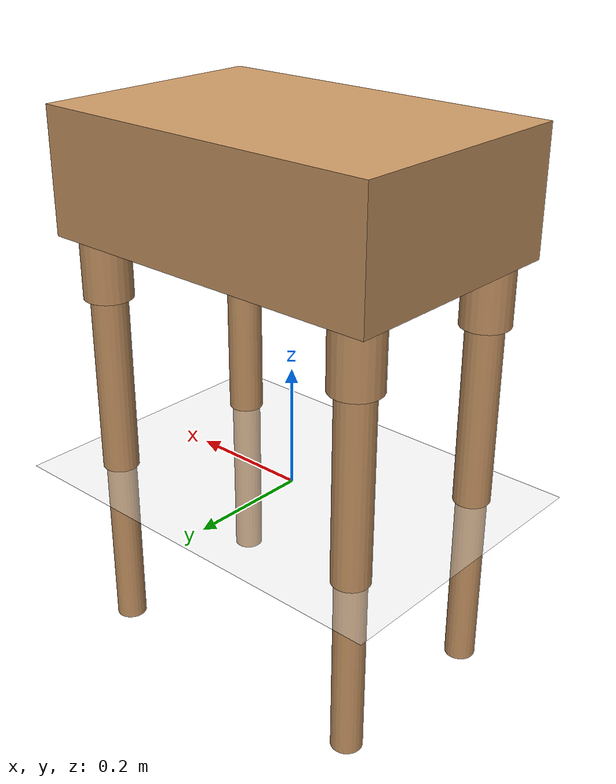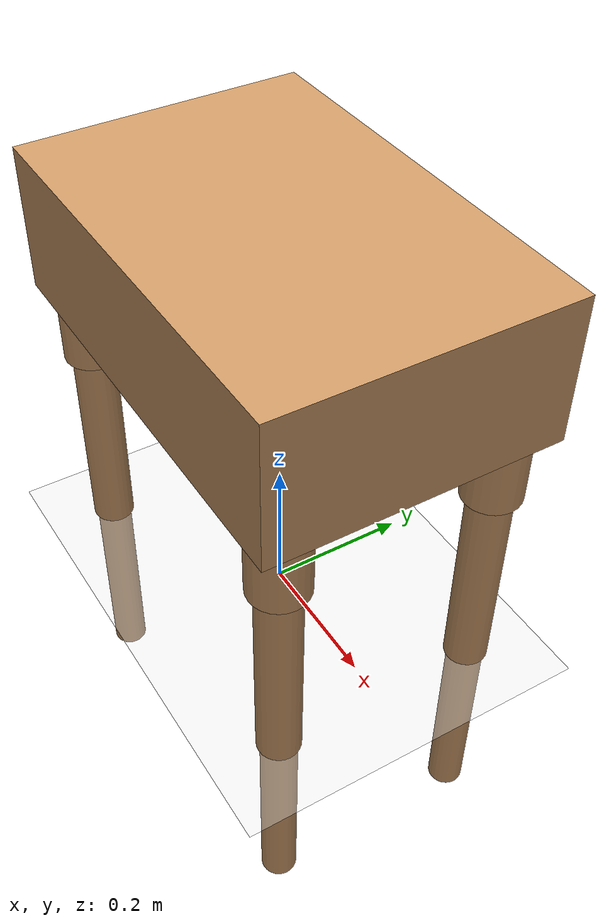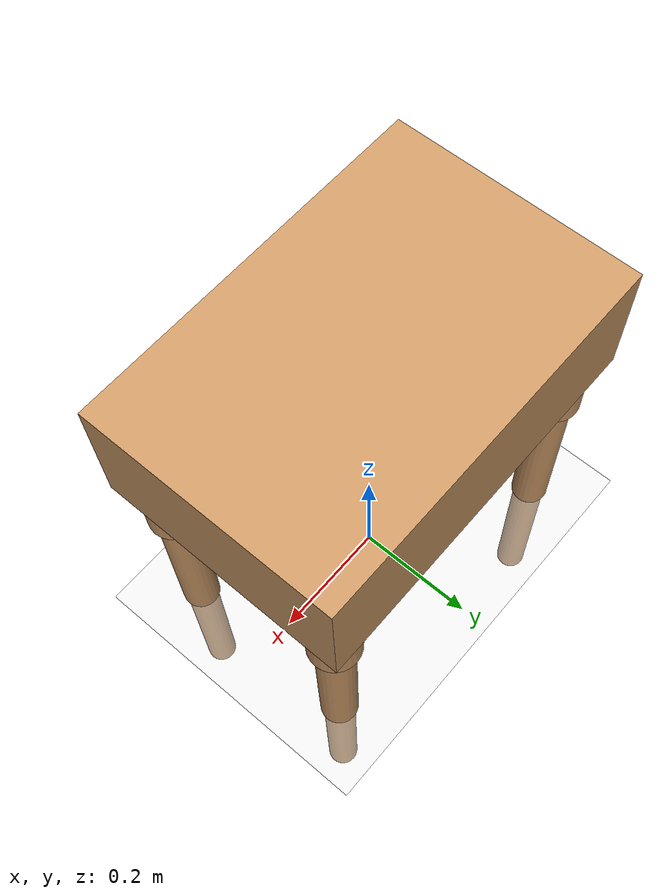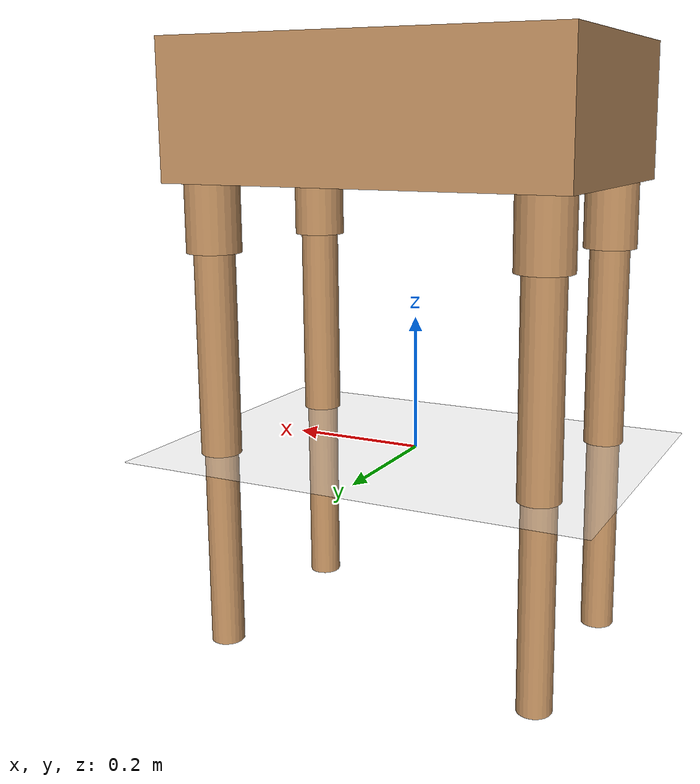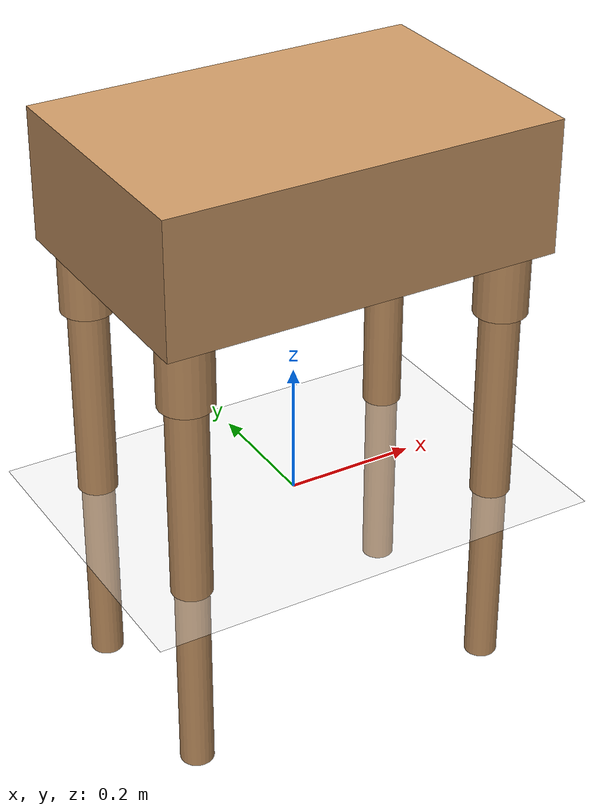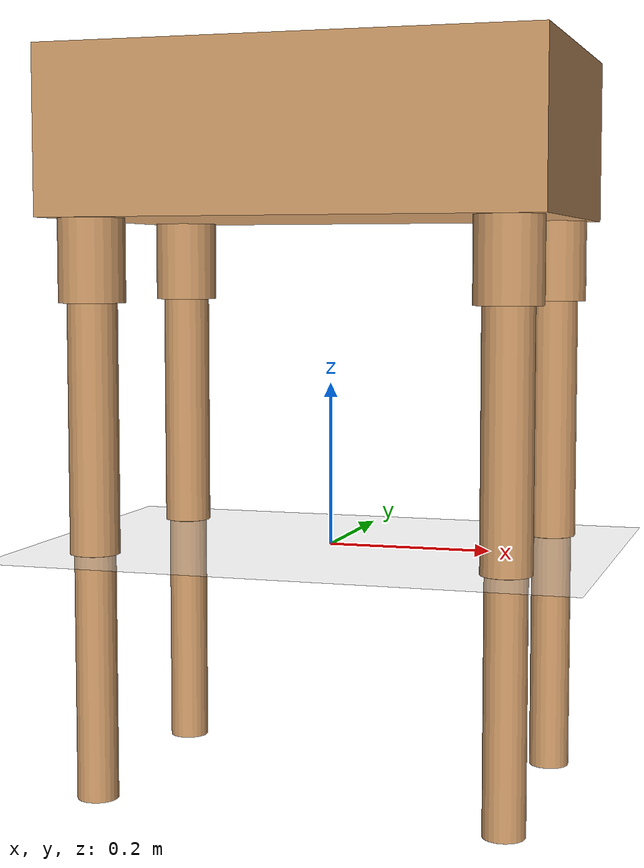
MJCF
<?xml version='1.0' encoding='utf-8'?>
<mujoco model="quadruped_robot">
  <compiler angle="radian" meshdir="D:\ROS2_PROJECT\robotstudio\examples\quadruped_robot\meshes" autolimits="true" />
  <option timestep="0.001" gravity="0 0 -9.81" />
  <default>
    <geom rgba="0.8 0.6 0.4 1" friction="1 0.5 0.5" />
  </default>
  <asset>
    <material name="body_color" rgba="0.8 0.8 0.8 1.0" />
    <material name="hip_color" rgba="0.3 0.3 0.3 1.0" />
    <material name="leg_color" rgba="0.2 0.2 0.8 1.0" />
  </asset>
  <worldbody>
    <light diffuse="0.5 0.5 0.5" pos="0 0 3" dir="0 0 -1" />
    <geom name="floor" type="plane" size="0 0 1" rgba="0.9 0.9 0.9 1" />
    <body name="base_link" pos="0 0 0.5">
      <freejoint name="base_link_freejoint" />
      <inertial mass="15.0" pos="0 0 0" fullinertia="0.225 0.775 0.925 0.0 0.0 0.0" />
      <geom name="base_link_visual" type="box" group="0" pos="0 0 0" size="0.3 0.2 0.1" material="body_color" />
      <geom name="base_link_collision" type="box" group="3" rgba="0.5 0.5 0.5 0.3" pos="0 0 0" size="0.3 0.2 0.1" />
      <body name="front_left_hip" pos="0.25 0.15 -0.1">
        <joint name="front_left_hip_joint" type="hinge" axis="0 0 1" range="-0.785 0.785" damping="0.5" frictionloss="0.1" />
        <inertial mass="1.0" pos="0 0 -0.05" fullinertia="0.001 0.001 0.001 0.0 0.0 0.0" />
        <geom name="front_left_hip_visual" type="cylinder" group="0" pos="0 0 -0.05" size="0.04 0.05" material="hip_color" />
        <geom name="front_left_hip_collision" type="cylinder" group="3" rgba="0.5 0.5 0.5 0.3" pos="0 0 -0.05" size="0.04 0.05" />
        <body name="front_left_upper_leg" pos="0 0 -0.1">
          <joint name="front_left_shoulder_joint" type="hinge" axis="1 0 0" range="-1.047 1.047" damping="0.5" frictionloss="0.1" />
          <inertial mass="0.8" pos="0 0 -0.15" fullinertia="0.006 0.006 0.0007 0.0 0.0 0.0" />
          <geom name="front_left_upper_leg_visual" type="cylinder" group="0" pos="0 0 -0.15" size="0.03 0.15" material="leg_color" />
          <geom name="front_left_upper_leg_collision" type="cylinder" group="3" rgba="0.5 0.5 0.5 0.3" pos="0 0 -0.15" size="0.03 0.15" />
          <body name="front_left_lower_leg" pos="0 0 -0.3">
            <joint name="front_left_knee_joint" type="hinge" axis="1 0 0" range="-2.094 -0.174" damping="0.5" frictionloss="0.1" />
            <inertial mass="0.7" pos="0 0 -0.15" fullinertia="0.005 0.005 0.0006 0.0 0.0 0.0" />
            <geom name="front_left_lower_leg_visual" type="cylinder" group="0" pos="0 0 -0.15" size="0.025 0.15" material="leg_color" />
            <geom name="front_left_lower_leg_collision" type="cylinder" group="3" rgba="0.5 0.5 0.5 0.3" pos="0 0 -0.15" size="0.025 0.15" />
          </body>
        </body>
      </body>
      <body name="front_right_hip" pos="0.25 -0.15 -0.1">
        <joint name="front_right_hip_joint" type="hinge" axis="0 0 1" range="-0.785 0.785" damping="0.5" frictionloss="0.1" />
        <inertial mass="1.0" pos="0 0 -0.05" fullinertia="0.001 0.001 0.001 0.0 0.0 0.0" />
        <geom name="front_right_hip_visual" type="cylinder" group="0" pos="0 0 -0.05" size="0.04 0.05" material="hip_color" />
        <geom name="front_right_hip_collision" type="cylinder" group="3" rgba="0.5 0.5 0.5 0.3" pos="0 0 -0.05" size="0.04 0.05" />
        <body name="front_right_upper_leg" pos="0 0 -0.1">
          <joint name="front_right_shoulder_joint" type="hinge" axis="1 0 0" range="-1.047 1.047" damping="0.5" frictionloss="0.1" />
          <inertial mass="0.8" pos="0 0 -0.15" fullinertia="0.006 0.006 0.0007 0.0 0.0 0.0" />
          <geom name="front_right_upper_leg_visual" type="cylinder" group="0" pos="0 0 -0.15" size="0.03 0.15" material="leg_color" />
          <geom name="front_right_upper_leg_collision" type="cylinder" group="3" rgba="0.5 0.5 0.5 0.3" pos="0 0 -0.15" size="0.03 0.15" />
          <body name="front_right_lower_leg" pos="0 0 -0.3">
            <joint name="front_right_knee_joint" type="hinge" axis="1 0 0" range="-2.094 -0.174" damping="0.5" frictionloss="0.1" />
            <inertial mass="0.7" pos="0 0 -0.15" fullinertia="0.005 0.005 0.0006 0.0 0.0 0.0" />
            <geom name="front_right_lower_leg_visual" type="cylinder" group="0" pos="0 0 -0.15" size="0.025 0.15" material="leg_color" />
            <geom name="front_right_lower_leg_collision" type="cylinder" group="3" rgba="0.5 0.5 0.5 0.3" pos="0 0 -0.15" size="0.025 0.15" />
          </body>
        </body>
      </body>
      <body name="rear_left_hip" pos="-0.25 0.15 -0.1">
        <joint name="rear_left_hip_joint" type="hinge" axis="0 0 1" range="-0.785 0.785" damping="0.5" frictionloss="0.1" />
        <inertial mass="1.0" pos="0 0 -0.05" fullinertia="0.001 0.001 0.001 0.0 0.0 0.0" />
        <geom name="rear_left_hip_visual" type="cylinder" group="0" pos="0 0 -0.05" size="0.04 0.05" material="hip_color" />
        <geom name="rear_left_hip_collision" type="cylinder" group="3" rgba="0.5 0.5 0.5 0.3" pos="0 0 -0.05" size="0.04 0.05" />
        <body name="rear_left_upper_leg" pos="0 0 -0.1">
          <joint name="rear_left_shoulder_joint" type="hinge" axis="1 0 0" range="-1.047 1.047" damping="0.5" frictionloss="0.1" />
          <inertial mass="0.8" pos="0 0 -0.15" fullinertia="0.006 0.006 0.0007 0.0 0.0 0.0" />
          <geom name="rear_left_upper_leg_visual" type="cylinder" group="0" pos="0 0 -0.15" size="0.03 0.15" material="leg_color" />
          <geom name="rear_left_upper_leg_collision" type="cylinder" group="3" rgba="0.5 0.5 0.5 0.3" pos="0 0 -0.15" size="0.03 0.15" />
          <body name="rear_left_lower_leg" pos="0 0 -0.3">
            <joint name="rear_left_knee_joint" type="hinge" axis="1 0 0" range="-2.094 -0.174" damping="0.5" frictionloss="0.1" />
            <inertial mass="0.7" pos="0 0 -0.15" fullinertia="0.005 0.005 0.0006 0.0 0.0 0.0" />
            <geom name="rear_left_lower_leg_visual" type="cylinder" group="0" pos="0 0 -0.15" size="0.025 0.15" material="leg_color" />
            <geom name="rear_left_lower_leg_collision" type="cylinder" group="3" rgba="0.5 0.5 0.5 0.3" pos="0 0 -0.15" size="0.025 0.15" />
          </body>
        </body>
      </body>
      <body name="rear_right_hip" pos="-0.25 -0.15 -0.1">
        <joint name="rear_right_hip_joint" type="hinge" axis="0 0 1" range="-0.785 0.785" damping="0.5" frictionloss="0.1" />
        <inertial mass="1.0" pos="0 0 -0.05" fullinertia="0.001 0.001 0.001 0.0 0.0 0.0" />
        <geom name="rear_right_hip_visual" type="cylinder" group="0" pos="0 0 -0.05" size="0.04 0.05" material="hip_color" />
        <geom name="rear_right_hip_collision" type="cylinder" group="3" rgba="0.5 0.5 0.5 0.3" pos="0 0 -0.05" size="0.04 0.05" />
        <body name="rear_right_upper_leg" pos="0 0 -0.1">
          <joint name="rear_right_shoulder_joint" type="hinge" axis="1 0 0" range="-1.047 1.047" damping="0.5" frictionloss="0.1" />
          <inertial mass="0.8" pos="0 0 -0.15" fullinertia="0.006 0.006 0.0007 0.0 0.0 0.0" />
          <geom name="rear_right_upper_leg_visual" type="cylinder" group="0" pos="0 0 -0.15" size="0.03 0.15" material="leg_color" />
          <geom name="rear_right_upper_leg_collision" type="cylinder" group="3" rgba="0.5 0.5 0.5 0.3" pos="0 0 -0.15" size="0.03 0.15" />
          <body name="rear_right_lower_leg" pos="0 0 -0.3">
            <joint name="rear_right_knee_joint" type="hinge" axis="1 0 0" range="-2.094 -0.174" damping="0.5" frictionloss="0.1" />
            <inertial mass="0.7" pos="0 0 -0.15" fullinertia="0.005 0.005 0.0006 0.0 0.0 0.0" />
            <geom name="rear_right_lower_leg_visual" type="cylinder" group="0" pos="0 0 -0.15" size="0.025 0.15" material="leg_color" />
            <geom name="rear_right_lower_leg_collision" type="cylinder" group="3" rgba="0.5 0.5 0.5 0.3" pos="0 0 -0.15" size="0.025 0.15" />
          </body>
        </body>
      </body>
    </body>
  </worldbody>
  <actuator>
    <position name="front_left_hip_joint_motor" joint="front_left_hip_joint" kp="10" ctrlrange="-50.0 50.0" />
    <position name="front_left_shoulder_joint_motor" joint="front_left_shoulder_joint" kp="10" ctrlrange="-50.0 50.0" />
    <position name="front_left_knee_joint_motor" joint="front_left_knee_joint" kp="10" ctrlrange="-50.0 50.0" />
    <position name="front_right_hip_joint_motor" joint="front_right_hip_joint" kp="10" ctrlrange="-50.0 50.0" />
    <position name="front_right_shoulder_joint_motor" joint="front_right_shoulder_joint" kp="10" ctrlrange="-50.0 50.0" />
    <position name="front_right_knee_joint_motor" joint="front_right_knee_joint" kp="10" ctrlrange="-50.0 50.0" />
    <position name="rear_left_hip_joint_motor" joint="rear_left_hip_joint" kp="10" ctrlrange="-50.0 50.0" />
    <position name="rear_left_shoulder_joint_motor" joint="rear_left_shoulder_joint" kp="10" ctrlrange="-50.0 50.0" />
    <position name="rear_left_knee_joint_motor" joint="rear_left_knee_joint" kp="10" ctrlrange="-50.0 50.0" />
    <position name="rear_right_hip_joint_motor" joint="rear_right_hip_joint" kp="10" ctrlrange="-50.0 50.0" />
    <position name="rear_right_shoulder_joint_motor" joint="rear_right_shoulder_joint" kp="10" ctrlrange="-50.0 50.0" />
    <position name="rear_right_knee_joint_motor" joint="rear_right_knee_joint" kp="10" ctrlrange="-50.0 50.0" />
  </actuator>
  <sensor>
    <jointpos name="front_left_hip_joint_pos" joint="front_left_hip_joint" />
    <jointvel name="front_left_hip_joint_vel" joint="front_left_hip_joint" />
    <jointpos name="front_left_shoulder_joint_pos" joint="front_left_shoulder_joint" />
    <jointvel name="front_left_shoulder_joint_vel" joint="front_left_shoulder_joint" />
    <jointpos name="front_left_knee_joint_pos" joint="front_left_knee_joint" />
    <jointvel name="front_left_knee_joint_vel" joint="front_left_knee_joint" />
    <jointpos name="front_right_hip_joint_pos" joint="front_right_hip_joint" />
    <jointvel name="front_right_hip_joint_vel" joint="front_right_hip_joint" />
    <jointpos name="front_right_shoulder_joint_pos" joint="front_right_shoulder_joint" />
    <jointvel name="front_right_shoulder_joint_vel" joint="front_right_shoulder_joint" />
    <jointpos name="front_right_knee_joint_pos" joint="front_right_knee_joint" />
    <jointvel name="front_right_knee_joint_vel" joint="front_right_knee_joint" />
    <jointpos name="rear_left_hip_joint_pos" joint="rear_left_hip_joint" />
    <jointvel name="rear_left_hip_joint_vel" joint="rear_left_hip_joint" />
    <jointpos name="rear_left_shoulder_joint_pos" joint="rear_left_shoulder_joint" />
    <jointvel name="rear_left_shoulder_joint_vel" joint="rear_left_shoulder_joint" />
    <jointpos name="rear_left_knee_joint_pos" joint="rear_left_knee_joint" />
    <jointvel name="rear_left_knee_joint_vel" joint="rear_left_knee_joint" />
    <jointpos name="rear_right_hip_joint_pos" joint="rear_right_hip_joint" />
    <jointvel name="rear_right_hip_joint_vel" joint="rear_right_hip_joint" />
    <jointpos name="rear_right_shoulder_joint_pos" joint="rear_right_shoulder_joint" />
    <jointvel name="rear_right_shoulder_joint_vel" joint="rear_right_shoulder_joint" />
    <jointpos name="rear_right_knee_joint_pos" joint="rear_right_knee_joint" />
    <jointvel name="rear_right_knee_joint_vel" joint="rear_right_knee_joint" />
  </sensor>
</mujoco>
